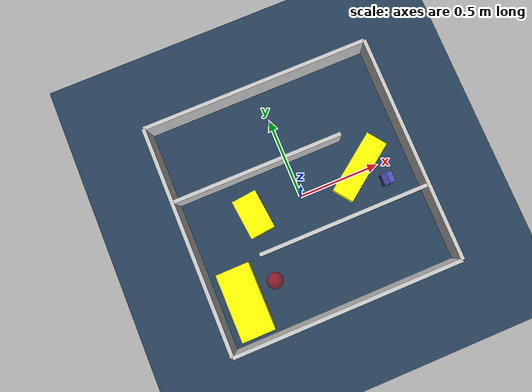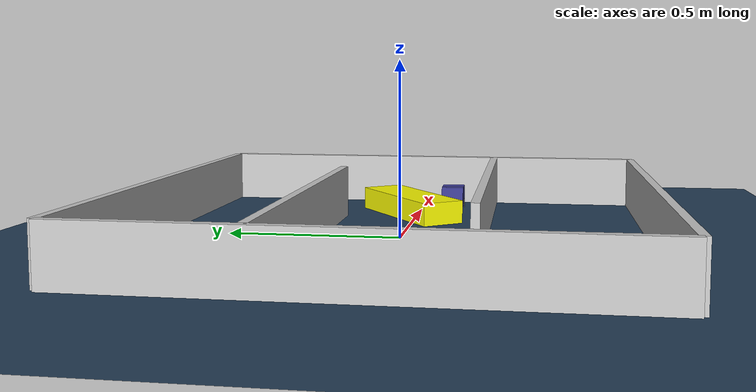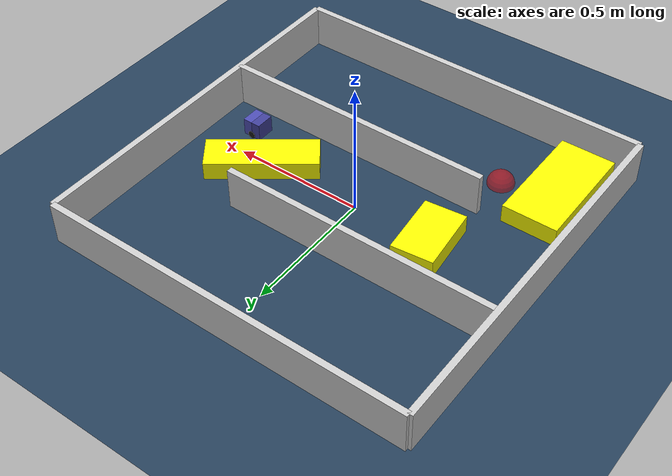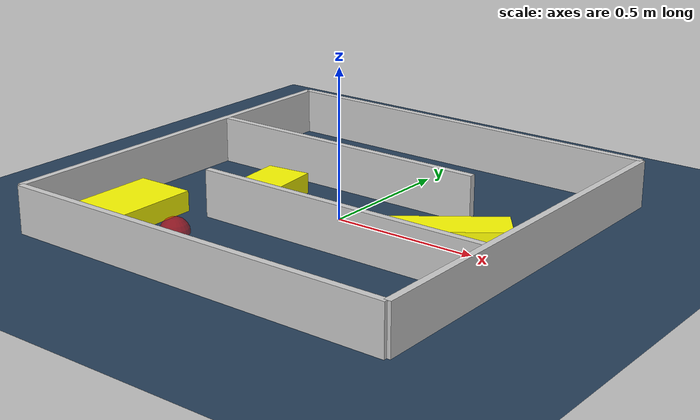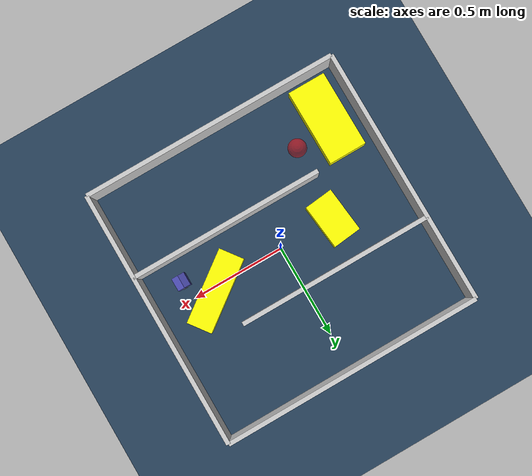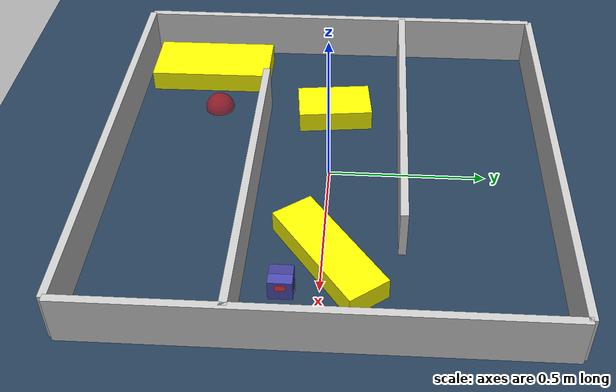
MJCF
<?xml version='1.0' encoding='utf-8'?>
<mujoco model="generated_environment">
  <option timestep="0.002" integrator="implicitfast" cone="elliptic" iterations="100" gravity="0 0 -9.81" />
  <default>
    <geom density="1" />
  </default>
  <asset>
    <texture builtin="gradient" height="3072" rgb1="0.3 0.5 0.7" rgb2="0 0 0" type="skybox" width="512" />
    <texture builtin="checker" height="300" mark="edge" markrgb="0.8 0.8 0.8" name="groundplane" rgb1="0.2 0.3 0.4" rgb2="0.1 0.2 0.3" type="2d" width="300" />
    <material name="groundplane" reflectance="0.2" texrepeat="5 5" texture="groundplane" texuniform="true" />
    <material name="robot" rgba="1.0 1.0 0.0 1.0" />
  </asset>
  <worldbody>
    <light dir="0 0 -1" directional="true" pos="0 0 1.5" />
    <geom condim="4" friction="0.5 0.005 0.001" material="groundplane" name="floor" size="0 0 0.05" type="plane" />
    <body name="walls">
      <geom name="wall_1" condim="4" pos="-0.699000 0.000000 0.080000" rgba="0.800000011920929 0.800000011920929 0.800000011920929 1.0" size="0.011650 0.699000 0.080000" type="box" />
      <geom name="wall_2" condim="4" pos="0.699000 0.000000 0.080000" rgba="0.800000011920929 0.800000011920929 0.800000011920929 1.0" size="0.011650 0.699000 0.080000" type="box" />
      <geom name="wall_3" condim="4" pos="0.000000 -0.699000 0.080000" rgba="0.800000011920929 0.800000011920929 0.800000011920929 1.0" size="0.699000 0.011650 0.080000" type="box" />
      <geom name="wall_4" condim="4" pos="0.000000 0.699000 0.080000" rgba="0.800000011920929 0.800000011920929 0.800000011920929 1.0" size="0.699000 0.011650 0.080000" type="box" />
      <geom name="wall_5" condim="4" pos="0.174750 -0.233000 0.080000" rgba="0.800000011920929 0.800000011920929 0.800000011920929 1.0" size="0.524250 0.011650 0.080000" type="box" />
      <geom name="wall_6" condim="4" pos="-0.174750 0.233000 0.080000" rgba="0.800000011920929 0.800000011920929 0.800000011920929 1.0" size="0.524250 0.011650 0.080000" type="box" />
    </body>
    <body name="car" pos="0.5150000000000002 -0.10499999999999987 0.010000">
      <freejoint name="car_freejoint" />
      <inertial pos="0.000000 0 0.037500" mass="0.350000" diaginertia="0.000266 0.000266 0.000286" />
      <geom name="front_chassis_collision" type="box" pos="0.017500 0 0.037500" size="0.017500 0.035000 0.032500" rgba="0.3 0.3 0.7 1" />
      <geom name="rear_chassis_collision" type="box" pos="-0.017500 0 0.037500" size="0.017500 0.035000 0.032500" rgba="0.25 0.25 0.6 1" />
      <geom name="front_marker" type="box" pos="0.034000 0 0.050500" size="0.002000 0.015000 0.010000" rgba="1.0 0.2 0.2 1" contype="0" conaffinity="0" />
      <body name="rear_support_body" pos="-0.030000 0.000000 0.002500">
        <joint name="rear_caster_joint" type="ball" damping="0.0001" />
        <inertial pos="0 0 0" mass="0.025000" diaginertia="0.000001 0.000001 0.000001" />
        <geom name="rear_support" type="sphere" pos="0 0 0" size="0.002500" friction="0.000000 0.000000 0.000000" rgba="0.7 0.1 0.1 1" />
      </body>
      <body name="front_support_body" pos="0.030000 0.000000 0.002500">
        <joint name="front_caster_joint" type="ball" damping="0.0001" />
        <inertial pos="0 0 0" mass="0.025000" diaginertia="0.000001 0.000001 0.000001" />
        <geom name="front_support" type="sphere" pos="0 0 0" size="0.002500" friction="0.000000 0.000000 0.000000" rgba="0.1 0.7 0.1 1" />
      </body>
      <body name="left_wheel" pos="0.000000 0.037500 0.015000">
        <inertial pos="0 0 0" mass="0.050000" diaginertia="0.000003 0.000006 0.000003" />
        <joint name="left_wheel_joint" type="hinge" axis="0 1 0" />
        <geom name="left_wheel_collision" type="cylinder" size="0.015000 0.000500" euler="90 0 0" rgba="0.1 0.1 0.1 1" />
      </body>
      <body name="right_wheel" pos="0.000000 -0.037500 0.015000">
        <inertial pos="0 0 0" mass="0.050000" diaginertia="0.000003 0.000006 0.000003" />
        <joint name="right_wheel_joint" type="hinge" axis="0 1 0" />
        <geom name="right_wheel_collision" type="cylinder" size="0.015000 0.000500" euler="90 0 0" rgba="0.1 0.1 0.1 1" />
      </body>
    </body>
    <body name="obstacle_0_movable">
      <geom name="obstacle_0_movable" condim="4" pos="-0.3022573795481943 0.002472252228943095 0.035" euler="0 0 6.236839376943357" friction="0.0 0.005 0.001" rgba="1 1 0 1" size="0.07787883810477937 0.12317089148552088 0.035" type="box" mass="0.1" />
      <joint type="free" />
    </body>
    <body name="obstacle_1_movable">
      <geom name="obstacle_1_movable" condim="4" pos="-0.5340913762062053 -0.45107997715816783 0.035" euler="0 0 0.26524720740048746" friction="0.0 0.005 0.001" rgba="1 1 0 1" size="0.10322957546739055 0.20837909370987862 0.035" type="box" mass="0.1" />
      <joint type="free" />
    </body>
    <body name="obstacle_2_movable">
      <geom name="obstacle_2_movable" condim="4" pos="0.38996687259140295 0.02064774875426656 0.035" euler="0 0 216.5623015162302" friction="0.0 0.005 0.001" rgba="1 1 0 1" size="0.20358655162665418 0.06778125182946512 0.035" type="box" mass="0.1" />
      <joint type="free" />
    </body>
    <site name="goal" type="sphere" pos="-0.33499999999999985 -0.40500000000000014 0.0" size="0.05" rgba="1 0 0 0.5" />
  </worldbody>
  <actuator>
    <velocity name="left_wheel_drive" joint="left_wheel_joint" ctrlrange="-25.000000 25.000000" kv="0.750000" forcerange="-0.300000 0.300000" />
    <velocity name="right_wheel_drive" joint="right_wheel_joint" ctrlrange="-25.000000 25.000000" kv="0.750000" forcerange="-0.300000 0.300000" />
  </actuator>
</mujoco>
